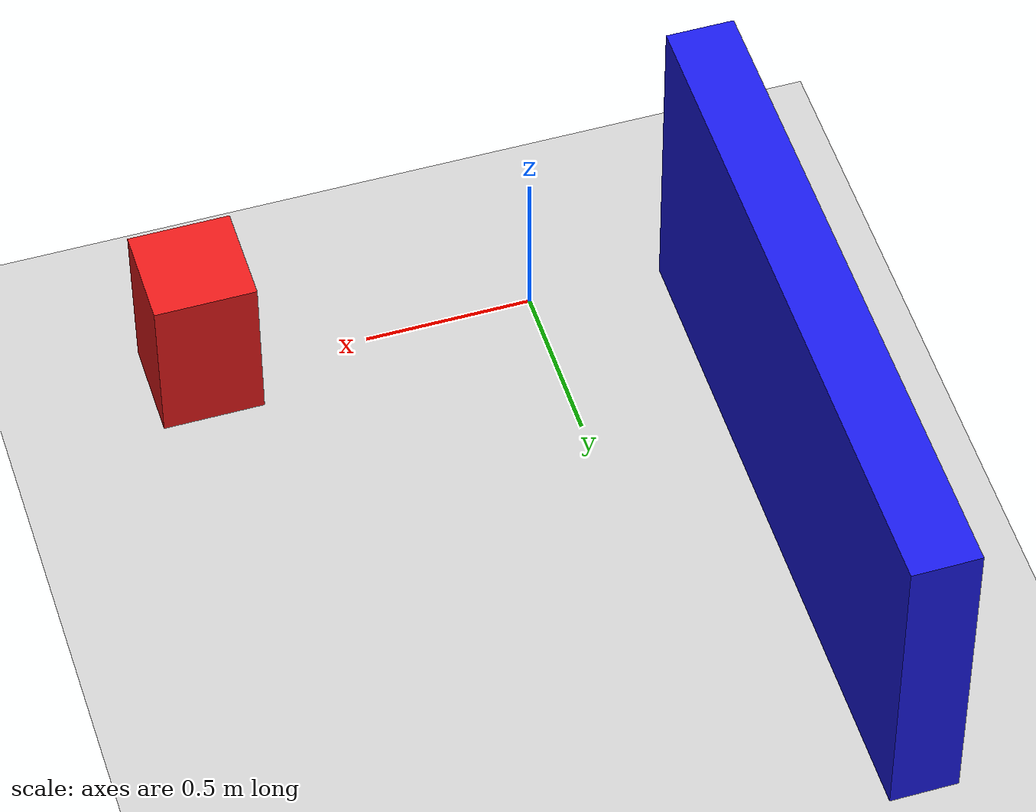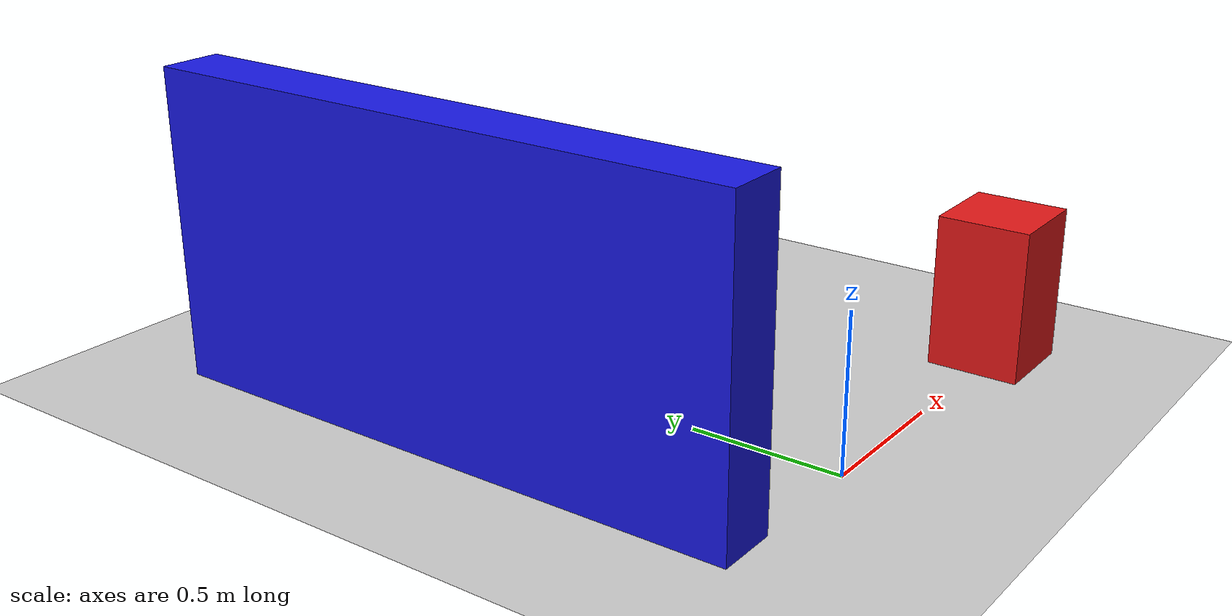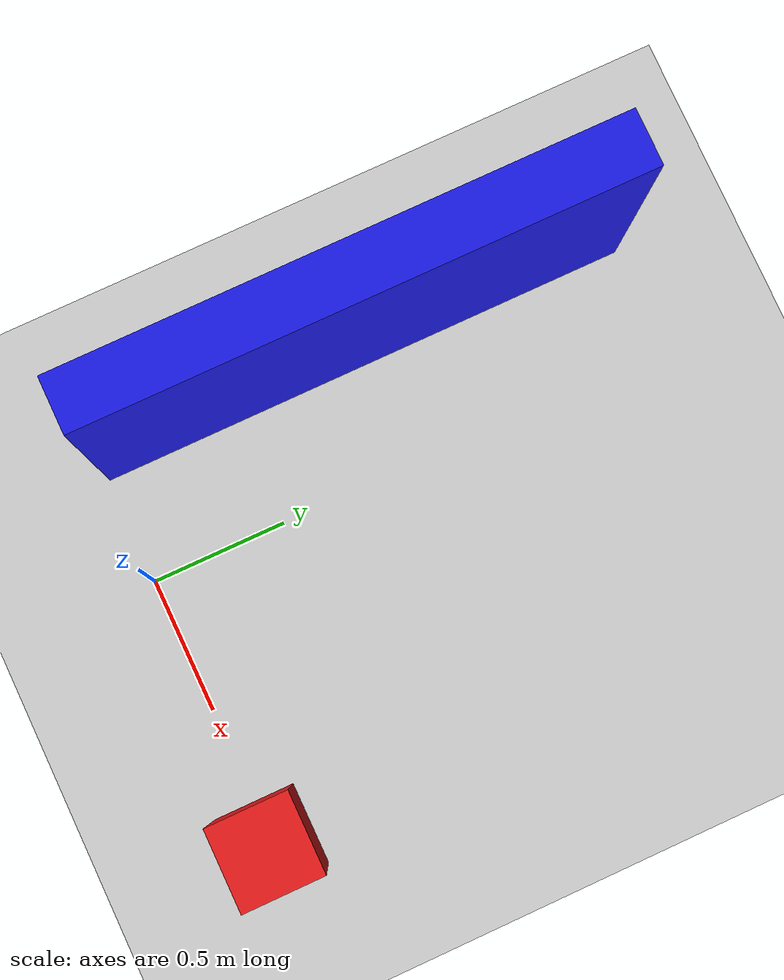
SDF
<?xml version="1.6" ?>
<sdf version="1.6">
  <world name="colorful_arena">
    <include><uri>model://ground_plane</uri></include>
    <include><uri>model://sun</uri></include>

    <!-- صندوق أحمر كعائق -->
    <model name="red_box">
      <pose>1.0 0.0 0.25 0 0 0</pose>
      <static>true</static>
      <link name="link">
        <collision name="col">
          <geometry><box><size>0.3 0.3 0.5</size></box></geometry>
        </collision>
        <visual name="vis">
          <geometry><box><size>0.3 0.3 0.5</size></box></geometry>
          <material><ambient>0.9 0.1 0.1 1</ambient></material>
        </visual>
      </link>
    </model>

    <!-- حائط أزرق طويل -->
    <model name="blue_wall">
      <pose>-0.5 1.0 0.5 0 0 0</pose>
      <static>true</static>
      <link name="link">
        <collision name="col">
          <geometry><box><size>0.2 2.0 1.0</size></box></geometry>
        </collision>
        <visual name="vis">
          <geometry><box><size>0.2 2.0 1.0</size></box></geometry>
          <material><ambient>0.1 0.1 0.9 1</ambient></material>
        </visual>
      </link>
    </model>

    <gravity>0 0 -9.8</gravity>
    <physics type="ode">
      <max_step_size>0.001</max_step_size>
      <real_time_update_rate>500</real_time_update_rate>
    </physics>
  </world>
</sdf>
